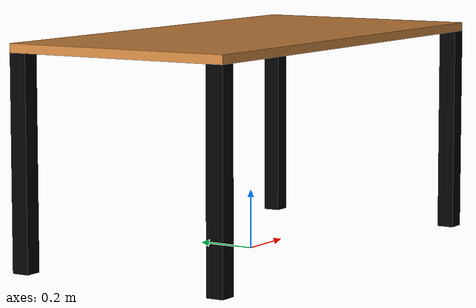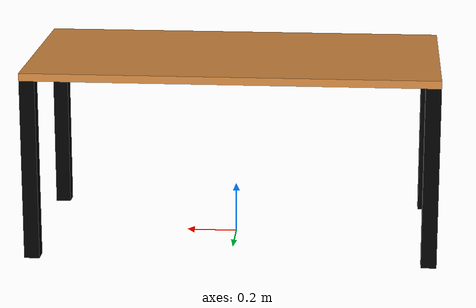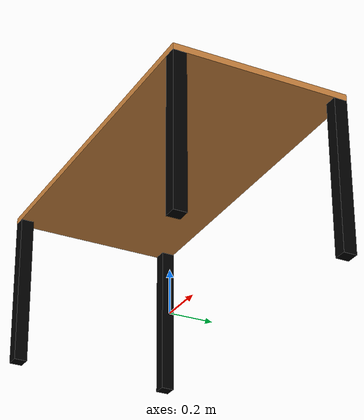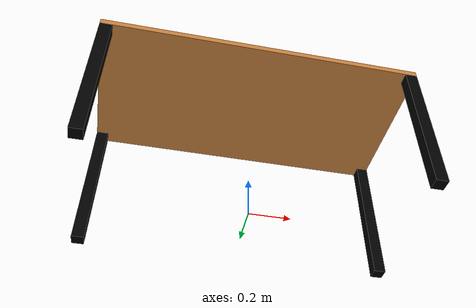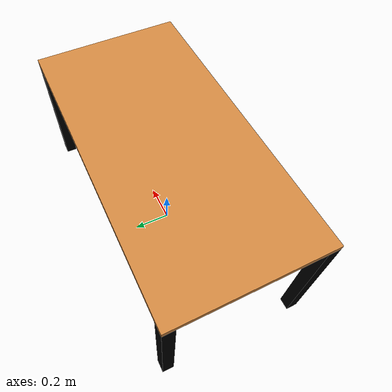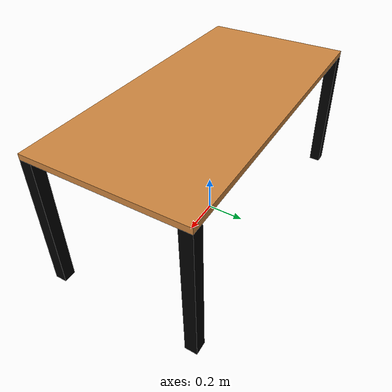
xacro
<?xml version="1.0"?>

<robot name="mesa_comedor" xmlns:xacro="http://www.ros.org/wiki/xacro">

<xacro:property name="altura" value="0.71" />
<xacro:property name="ancho" value="0.8" />
<xacro:property name="largo" value="1.6" />

<link name="world" />

<joint name="mesa" type="floating">
  <parent link="world"/>
  <child link="mesa_link"/>
  <origin xyz="0 0 0" rpy="0 0 0" />
</joint>

<link name="mesa_link">
  <visual>
    <geometry>
      <box size="${largo} ${ancho} 0.03" />
    </geometry>
    <origin rpy="0 0 0" xyz="0 0 ${(0.03/2)+altura}" />
    <material name="wood">
		<color rgba="${205/255} ${133/255} ${63/255} 1" />
    </material>
  </visual>
  <collision>
    <origin rpy="0 0 0" xyz="0 0 ${(0.03/2)+altura}" />
    <geometry>
      <box size="${largo} ${ancho} 0.03" />
    </geometry>
  </collision>
  <inertial>
    <origin rpy="0 0 0" xyz="0 0 ${(0.03/2)+altura}" />
    <mass value="3" />
      <inertia ixx="0.1" ixy="0.0" ixz="0.0" iyy="0.1" iyz="0.0" izz="0.1"/>
  </inertial>
</link>

<xacro:macro name="pata" params="id refx refy">
<joint name="pata_${id}" type="fixed">
  <parent link="mesa_link"/>
  <child link="pata_${id}_link"/>
  <origin xyz="${refx*((largo/2)-0.03)} ${refy*((ancho/2)-0.03)} 0" rpy="0 0 0" />
</joint>

<link name="pata_${id}_link">
  <visual>
    <geometry>
      <box size="0.06 0.06 ${altura}" />
    </geometry>
    <origin rpy="0 0 0" xyz="0 0 ${altura/2}" />
    <material name="black">
      <color rgba="0 0 0 1" />
    </material>
  </visual>
  <collision>
    <origin rpy="0 0 0" xyz="0 0 ${altura/2}" />
    <geometry>
      <box size="0.06 0.06 ${altura}" />
    </geometry>
  </collision>
  <inertial>
    <origin rpy="0 0 0" xyz="0 0 ${altura/2}" />
    <mass value="1" />
      <inertia ixx="0.1" ixy="0.0" ixz="0.0" iyy="0.1" iyz="0.0" izz="0.1"/>
  </inertial>
</link>
</xacro:macro>

<xacro:pata id="1" refx="1" refy="1"/>
<xacro:pata id="2" refx="1" refy="-1"/>
<xacro:pata id="3" refx="-1" refy="-1"/>
<xacro:pata id="4" refx="-1" refy="1"/>

<gazebo reference="mesa_link">
  <material>Gazebo/BlueTransparent</material>
  <mu1>1</mu1>
  <mu2>1</mu2>
  <selfCollide>true</selfCollide>
  <turnGravityOff>false</turnGravityOff>
</gazebo>

<xacro:macro name="gazebo_pata" params="id">
<gazebo reference="pata_${id}_link">
  <material>Gazebo/Wood</material>
  <mu1>1</mu1>
  <mu2>1</mu2>
  <selfCollide>true</selfCollide>
  <turnGravityOff>false</turnGravityOff>
</gazebo>
</xacro:macro>

<xacro:gazebo_pata id="1"/>
<xacro:gazebo_pata id="2"/>
<xacro:gazebo_pata id="3"/>
<xacro:gazebo_pata id="4"/>

</robot>
